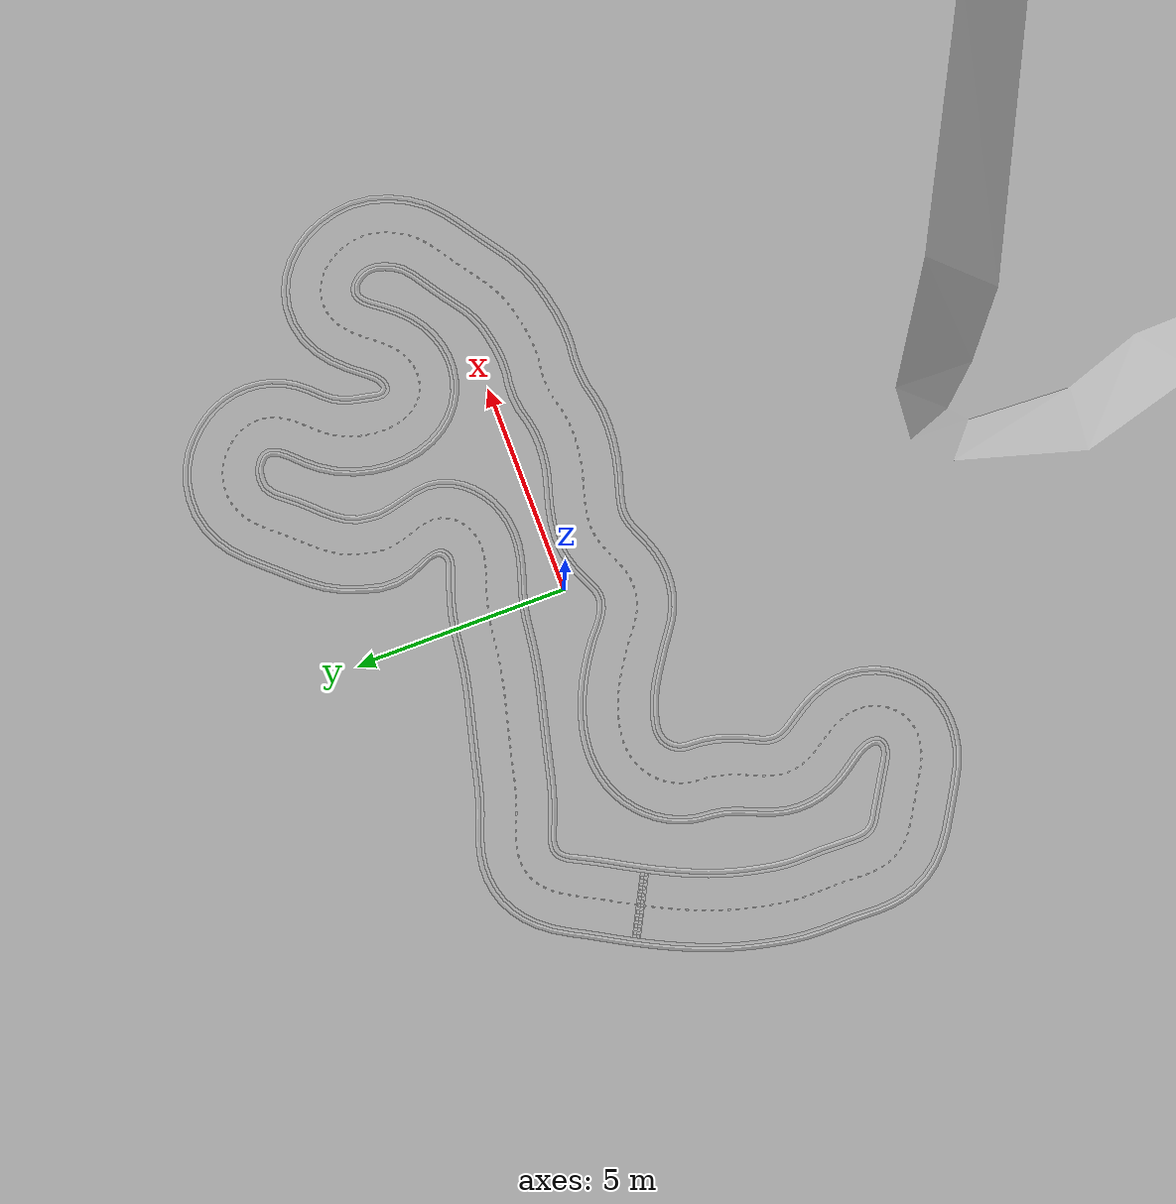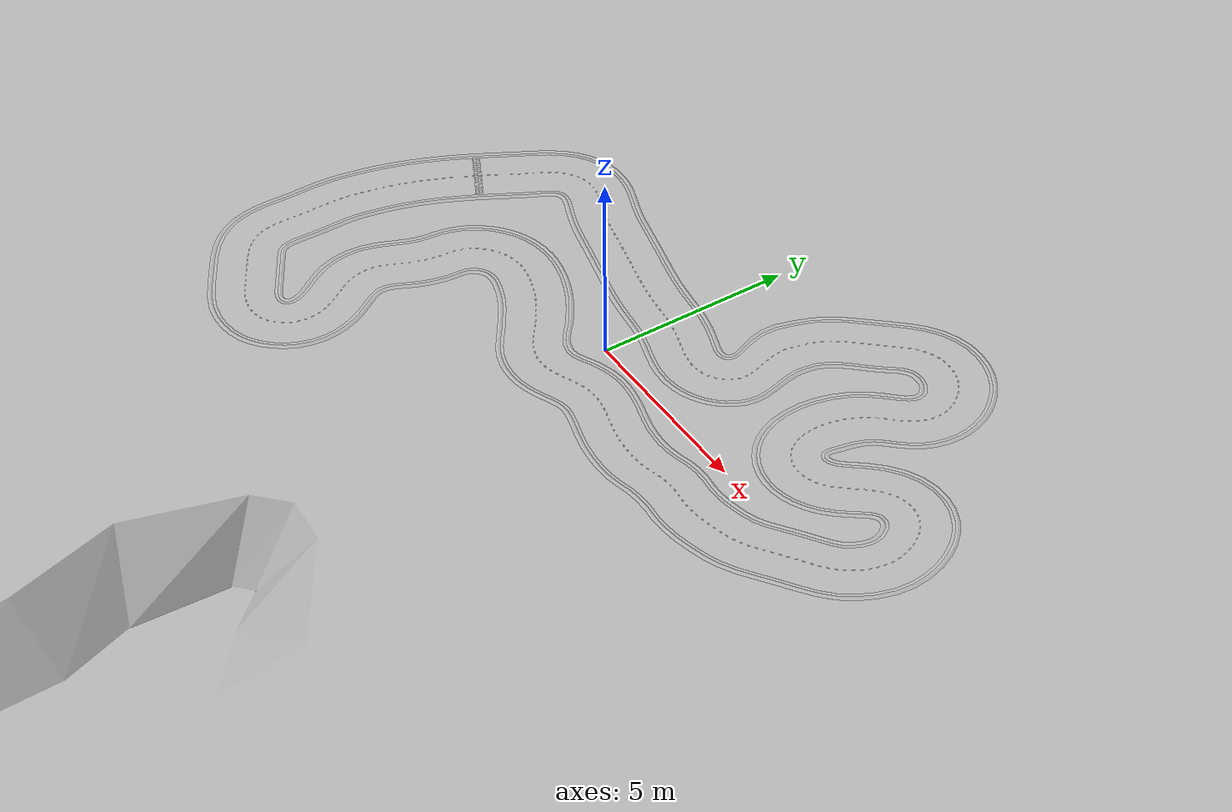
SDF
<?xml version="1.0"?>
<sdf version="1.4">
<world name="Monaco">
  <scene>
    <ambient>0.5 0.5 0.5 1.0</ambient>
    <shadows>0</shadows>
    <sky></sky>
  </scene>
  <include>
    <uri>model://sun</uri>
    <pose>0.0 0.0 15.0 0 0 0</pose>
    <cast_shadows>false</cast_shadows>
    <attenuation>
      <constant>0.5</constant>
      <linear>0.01</linear>
      <quadratic>0.0</quadratic>
      <range>100</range>
    </attenuation>
  </include>
  <light type="point" name="Light 1">
         <pose>0 0 15 0 0 0</pose>
         <diffuse>0.225 0.225 0.225 1</diffuse>
         <specular>.1 .1 .1 1</specular>
         <attenuation>
                <constant>0.4</constant>
                <linear>0.01</linear>
                <quadratic>0.00</quadratic>
                <range>50</range>
         </attenuation>
         <direction>0 0 -1</direction>
         <cast_shadows>false</cast_shadows>
  </light>
  <include>
    <uri>model://models/Monaco</uri>
    <pose>0 0 0 0 0 0</pose>
    <name>racetrack</name>
  </include>
</world>
</sdf>

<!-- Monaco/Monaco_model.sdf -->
<sdf version="1.4">
    <model name=" Monaco_model">
        <link name="Monaco_track_field">
            <collision name="collision">
                <pose>0 0 0 0 0 0</pose>
                <geometry>
                <mesh>
                <uri>model://meshes/Monaco/Monaco_track_field.dae</uri>
                </mesh>
                </geometry>
            </collision>
            <visual name="visual">
                <pose>0 0 0 0 0 0</pose>
                <geometry>
                <mesh>
                <uri>model://meshes/Monaco/Monaco_track_field.dae</uri>
                </mesh>
                </geometry>
            </visual>
        </link>

        <link name="Monaco_track_road_finishline">
            <visual name="visual">
                <pose>-0.08 -0.15 0 0 0 0</pose>
                <geometry>
                <mesh>
                <uri>model://meshes/Monaco/Monaco_track_road_finishline.dae</uri>
                </mesh>
                </geometry>
            </visual>
        </link>

        <link name="Monaco_track_road">
            <visual name="visual">
                <pose>0 0 0 0 0 0</pose>
                <geometry>
                <mesh>
                <uri>model://meshes/Monaco/Monaco_track_road.dae</uri>
                </mesh>
                </geometry>
            </visual>
        </link>

        <link name="Monaco_track_road_barrier">
            <visual name="visual">
                <pose>0 0 0 0 0 0</pose>
                <geometry>
                <mesh>
                <uri>model://meshes/Monaco/Monaco_track_road_barrier.dae</uri>
                </mesh>
                </geometry>
            </visual>
        </link>

        <link name="Monaco_track_centerline">
            <visual name="visual">
                <pose>0 0 0 0 0 0</pose>
                <geometry>
                <mesh>
                <uri>model://meshes/Monaco/Monaco_track_centerline.dae</uri>
                </mesh>
                </geometry>
            </visual>
        </link>

        <link name="Monaco_track_road_outerline">
            <visual name="visual">
                <pose>0 0 0 0 0 0</pose>
                <geometry>
                <mesh>
                <uri>model://meshes/Monaco/Monaco_track_road_outerline.dae</uri>
                </mesh>
                </geometry>
            </visual>
        </link>
        <static>1</static>
    </model>
</sdf>
